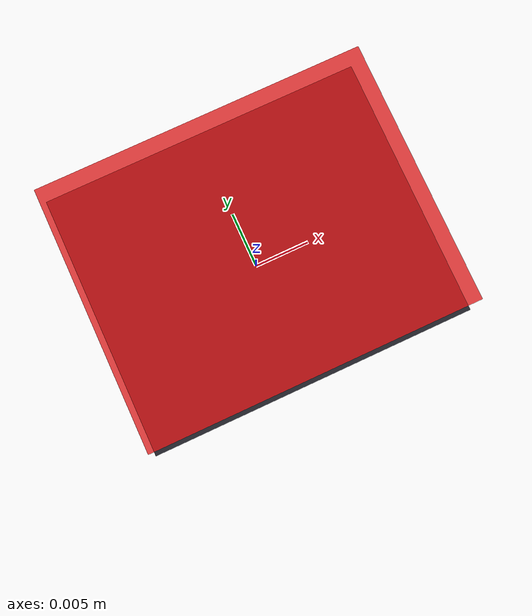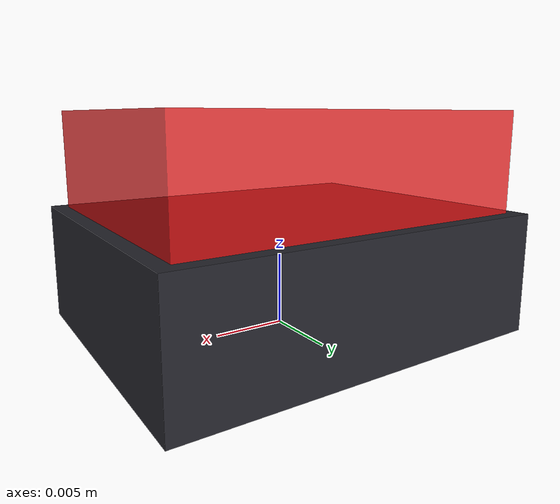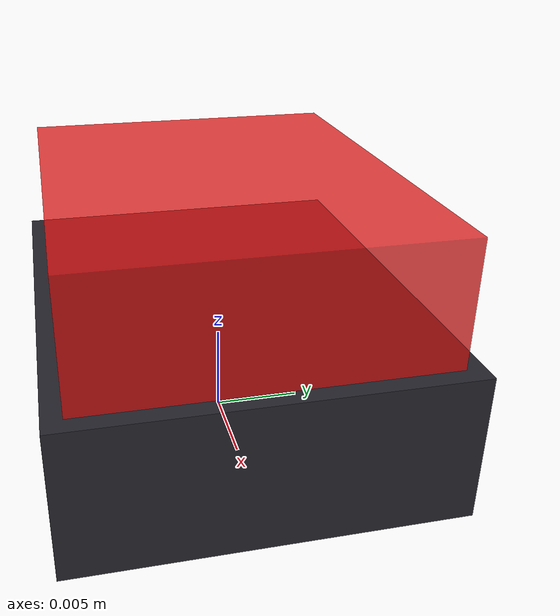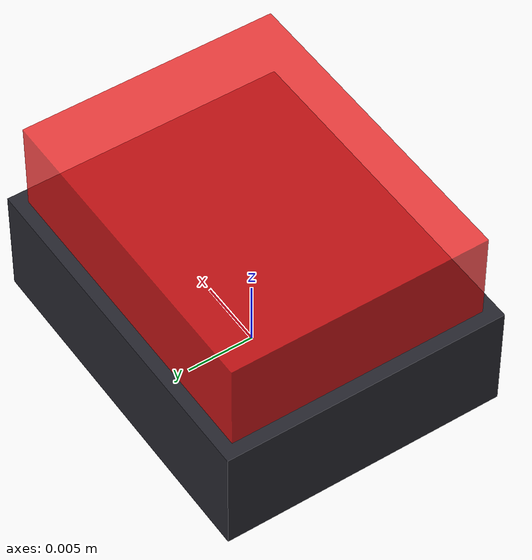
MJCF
<mujoco model="Switch_13">
  <asset>
    <material name="Switch_13_bezel" rgba="0.15 0.15 0.18 1"/>
    <material name="Switch_13_button" rgba="0.95 0.10 0.10 0.8"/>
  </asset>
  <worldbody>
    <body name="Switch_13">
      <geom name="Switch_13_bezel" type="box"
            pos="0 0 0.0041" size="0.013 0.0105 0.0041"
            material="Switch_13_bezel"/>
      <geom name="Switch_13_button" type="box"
            pos="0 0 0.0075" size="0.012 0.0095 0.0075"
            material="Switch_13_button"/>
    </body>
  </worldbody>
</mujoco>
